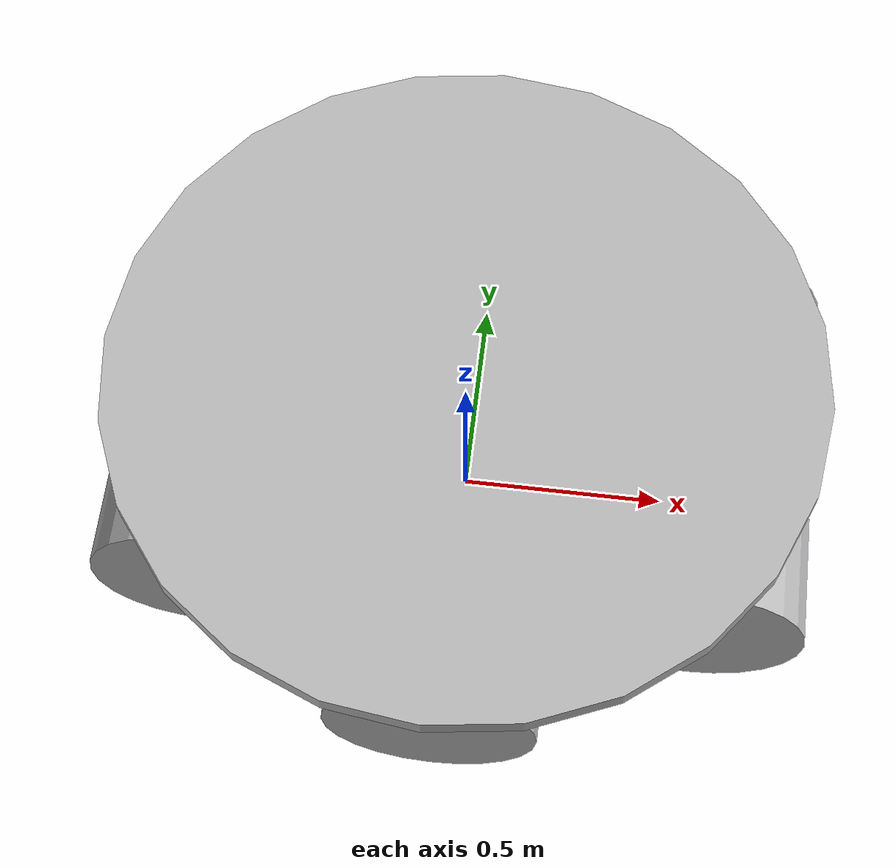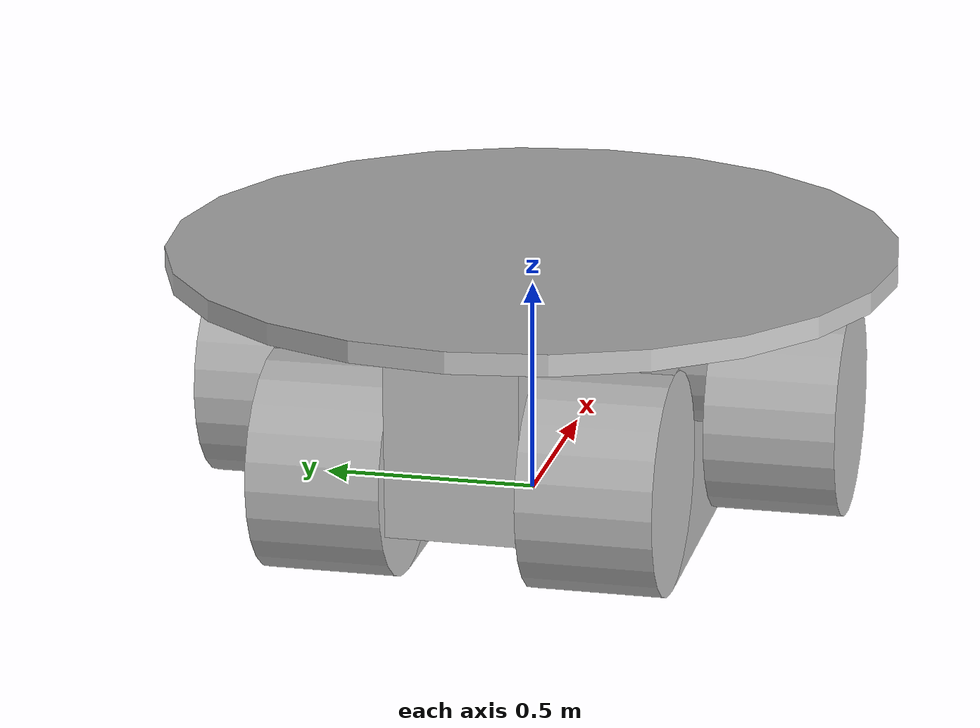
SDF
<?xml version='1.0'?>
<sdf version='1.6'>
		<model name="BaseModule">
			<self_collide>true</self_collide>
			<pose>0.0 0.0 0.0 0.0 0.0 0.0</pose>
			<!-- Start of parts of the pmodel BaseModule -->
				<!-- Start of declarations for part "BaseModule::LTREEL" -->
					<!-- Start of parts of part "BaseModule::LTREEL" -->
					<!-- End of parts of part "BaseModule::LTREEL" -->

					<!-- Start of links of part "BaseModule::LTREEL" -->
					<!-- link full name is BaseModule::LTREEL::Wheel -->
					<link name="1-Wheel">
							<pose>0.0 0.5999996434102257 0.2495222355772818 -1.5731851498233245 -0.0 0.0</pose>
							<inertial>
								<pose>0.0 0.0 0.0 0.0 0.0 0.0</pose>
								<inertia>
									<ixx>1.0</ixx>
									<ixy>0.0</ixy>
									<ixz>0.0</ixz>
									<iyy>1.0</iyy>
									<iyz>0.0</iyz>
									<izz>1.0</izz>
								</inertia>
								<mass>1.0</mass>
							</inertial>
							<!-- body full name is BaseModule::LTREEL::Wheel::wheel -->
							<collision name="1--wheel">
								<laser_retro>0.0</laser_retro>
								<pose>0.0 0.0 0.0 0.0 0.0 0.0</pose>
								<geometry>
									<cylinder>
										<radius>0.25</radius>
										<length>0.30000001192092896</length>
									</cylinder>
								</geometry>
								<surface>
									<bounce>
										<restitution_coefficient>0.0</restitution_coefficient>
										<threshold>100000.0</threshold>
									</bounce>
									<friction>
										<ode>
											<mu>1.0</mu>
											<mu2>1.0</mu2>
											<fdir1>0.0 0.0 0.0</fdir1>
											<slip1>0.0</slip1>
											<slip2>0.0</slip2>
										</ode>
										<torsional>
											<coefficient>1.0</coefficient>
											<surface_radius>0.0</surface_radius>
										</torsional>
									</friction>
								</surface>
							</collision>
							<visual name="1--wheel">
								<laser_retro>0.0</laser_retro>
								<pose>0.0 0.0 0.0 0.0 0.0 0.0</pose>
								<geometry>
									<cylinder>
										<radius>0.25</radius>
										<length>0.30000001192092896</length>
									</cylinder>
								</geometry>
								<surface>
									<bounce>
										<restitution_coefficient>0.0</restitution_coefficient>
										<threshold>100000.0</threshold>
									</bounce>
									<friction>
										<ode>
											<mu>1.0</mu>
											<mu2>1.0</mu2>
											<fdir1>0.0 0.0 0.0</fdir1>
											<slip1>0.0</slip1>
											<slip2>0.0</slip2>
										</ode>
										<torsional>
											<coefficient>1.0</coefficient>
											<surface_radius>0.0</surface_radius>
										</torsional>
									</friction>
								</surface>
							</visual>
					</link>
					<!-- link full name is BaseModule::LTREEL::Track -->
					<link name="2-Track">
							<pose>0.0 0.30000001192092896 0.25 3.140000104904175 0.0 0.0</pose>
							<inertial>
								<pose>0.0 0.0 0.0 0.0 0.0 0.0</pose>
								<inertia>
									<ixx>1.0</ixx>
									<ixy>0.0</ixy>
									<ixz>0.0</ixz>
									<iyy>1.0</iyy>
									<iyz>0.0</iyz>
									<izz>1.0</izz>
								</inertia>
								<mass>1.0</mass>
							</inertial>
							<!-- body full name is BaseModule::LTREEL::Track::FrontWheel -->
							<collision name="2--FrontWheel">
								<laser_retro>0.0</laser_retro>
								<pose>-0.6000000238418579 0.0 0.0 1.5700000524520874 0.0 0.0</pose>
								<geometry>
									<cylinder>
										<radius>0.25</radius>
										<length>0.30000001192092896</length>
									</cylinder>
								</geometry>
								<surface>
									<bounce>
										<restitution_coefficient>0.0</restitution_coefficient>
										<threshold>100000.0</threshold>
									</bounce>
									<friction>
										<ode>
											<mu>1.0</mu>
											<mu2>1.0</mu2>
											<fdir1>0.0 0.0 0.0</fdir1>
											<slip1>0.0</slip1>
											<slip2>0.0</slip2>
										</ode>
										<torsional>
											<coefficient>1.0</coefficient>
											<surface_radius>0.0</surface_radius>
										</torsional>
									</friction>
								</surface>
							</collision>
							<visual name="2--FrontWheel">
								<laser_retro>0.0</laser_retro>
								<pose>-0.6000000238418579 0.0 0.0 1.5700000524520874 0.0 0.0</pose>
								<geometry>
									<cylinder>
										<radius>0.25</radius>
										<length>0.30000001192092896</length>
									</cylinder>
								</geometry>
								<surface>
									<bounce>
										<restitution_coefficient>0.0</restitution_coefficient>
										<threshold>100000.0</threshold>
									</bounce>
									<friction>
										<ode>
											<mu>1.0</mu>
											<mu2>1.0</mu2>
											<fdir1>0.0 0.0 0.0</fdir1>
											<slip1>0.0</slip1>
											<slip2>0.0</slip2>
										</ode>
										<torsional>
											<coefficient>1.0</coefficient>
											<surface_radius>0.0</surface_radius>
										</torsional>
									</friction>
								</surface>
							</visual>
							<!-- body full name is BaseModule::LTREEL::Track::BackWheel -->
							<collision name="3--BackWheel">
								<laser_retro>0.0</laser_retro>
								<pose>0.6000000238418579 0.0 0.0 1.5700000524520874 0.0 0.0</pose>
								<geometry>
									<cylinder>
										<radius>0.25</radius>
										<length>0.30000001192092896</length>
									</cylinder>
								</geometry>
								<surface>
									<bounce>
										<restitution_coefficient>0.0</restitution_coefficient>
										<threshold>100000.0</threshold>
									</bounce>
									<friction>
										<ode>
											<mu>1.0</mu>
											<mu2>1.0</mu2>
											<fdir1>0.0 0.0 0.0</fdir1>
											<slip1>0.0</slip1>
											<slip2>0.0</slip2>
										</ode>
										<torsional>
											<coefficient>1.0</coefficient>
											<surface_radius>0.0</surface_radius>
										</torsional>
									</friction>
								</surface>
							</collision>
							<visual name="3--BackWheel">
								<laser_retro>0.0</laser_retro>
								<pose>0.6000000238418579 0.0 0.0 1.5700000524520874 0.0 0.0</pose>
								<geometry>
									<cylinder>
										<radius>0.25</radius>
										<length>0.30000001192092896</length>
									</cylinder>
								</geometry>
								<surface>
									<bounce>
										<restitution_coefficient>0.0</restitution_coefficient>
										<threshold>100000.0</threshold>
									</bounce>
									<friction>
										<ode>
											<mu>1.0</mu>
											<mu2>1.0</mu2>
											<fdir1>0.0 0.0 0.0</fdir1>
											<slip1>0.0</slip1>
											<slip2>0.0</slip2>
										</ode>
										<torsional>
											<coefficient>1.0</coefficient>
											<surface_radius>0.0</surface_radius>
										</torsional>
									</friction>
								</surface>
							</visual>
							<!-- body full name is BaseModule::LTREEL::Track::Top -->
							<collision name="4--Top">
								<laser_retro>0.0</laser_retro>
								<pose>0.0 0.0 0.25 0.0 0.0 0.0</pose>
								<geometry>
									<box>
										<size>1.2000000476837158 0.30000001192092896 0.0</size>
									</box>
								</geometry>
								<surface>
									<bounce>
										<restitution_coefficient>0.0</restitution_coefficient>
										<threshold>100000.0</threshold>
									</bounce>
									<friction>
										<ode>
											<mu>1.0</mu>
											<mu2>1.0</mu2>
											<fdir1>0.0 0.0 0.0</fdir1>
											<slip1>0.0</slip1>
											<slip2>0.0</slip2>
										</ode>
										<torsional>
											<coefficient>1.0</coefficient>
											<surface_radius>0.0</surface_radius>
										</torsional>
									</friction>
								</surface>
							</collision>
							<visual name="4--Top">
								<laser_retro>0.0</laser_retro>
								<pose>0.0 0.0 0.25 0.0 0.0 0.0</pose>
								<geometry>
									<box>
										<size>1.2000000476837158 0.30000001192092896 0.0</size>
									</box>
								</geometry>
								<surface>
									<bounce>
										<restitution_coefficient>0.0</restitution_coefficient>
										<threshold>100000.0</threshold>
									</bounce>
									<friction>
										<ode>
											<mu>1.0</mu>
											<mu2>1.0</mu2>
											<fdir1>0.0 0.0 0.0</fdir1>
											<slip1>0.0</slip1>
											<slip2>0.0</slip2>
										</ode>
										<torsional>
											<coefficient>1.0</coefficient>
											<surface_radius>0.0</surface_radius>
										</torsional>
									</friction>
								</surface>
							</visual>
							<!-- body full name is BaseModule::LTREEL::Track::Bottom -->
							<collision name="5--Bottom">
								<laser_retro>0.0</laser_retro>
								<pose>0.0 0.0 -0.25 0.0 0.0 0.0</pose>
								<geometry>
									<box>
										<size>1.2000000476837158 0.30000001192092896 0.0</size>
									</box>
								</geometry>
								<surface>
									<bounce>
										<restitution_coefficient>0.0</restitution_coefficient>
										<threshold>100000.0</threshold>
									</bounce>
									<friction>
										<ode>
											<mu>1.0</mu>
											<mu2>1.0</mu2>
											<fdir1>0.0 0.0 0.0</fdir1>
											<slip1>0.0</slip1>
											<slip2>0.0</slip2>
										</ode>
										<torsional>
											<coefficient>1.0</coefficient>
											<surface_radius>0.0</surface_radius>
										</torsional>
									</friction>
								</surface>
							</collision>
							<visual name="5--Bottom">
								<laser_retro>0.0</laser_retro>
								<pose>0.0 0.0 -0.25 0.0 0.0 0.0</pose>
								<geometry>
									<box>
										<size>1.2000000476837158 0.30000001192092896 0.0</size>
									</box>
								</geometry>
								<surface>
									<bounce>
										<restitution_coefficient>0.0</restitution_coefficient>
										<threshold>100000.0</threshold>
									</bounce>
									<friction>
										<ode>
											<mu>1.0</mu>
											<mu2>1.0</mu2>
											<fdir1>0.0 0.0 0.0</fdir1>
											<slip1>0.0</slip1>
											<slip2>0.0</slip2>
										</ode>
										<torsional>
											<coefficient>1.0</coefficient>
											<surface_radius>0.0</surface_radius>
										</torsional>
									</friction>
								</surface>
							</visual>
					</link>
					<!-- End of links of part "BaseModule::LTREEL" -->

					<!-- Start of joints of part "BaseModule::LTREEL" -->
					<!-- End of joints of part "BaseModule::LTREEL" -->

					<!-- Start of fixed connections of part "BaseModule::LTREEL" -->

					<!-- End of fixed connections of part "BaseModule::LTREEL" -->
				<!-- End of declarations for part "BaseModule::LTREEL" -->
				<!-- Start of declarations for part "BaseModule::RTREEL" -->
					<!-- Start of parts of part "BaseModule::RTREEL" -->
					<!-- End of parts of part "BaseModule::RTREEL" -->

					<!-- Start of links of part "BaseModule::RTREEL" -->
					<!-- link full name is BaseModule::RTREEL::Wheel -->
					<link name="3-Wheel">
							<pose>0.0 -0.6000000238418579 0.25 1.5700000524520874 -0.0 0.0</pose>
							<inertial>
								<pose>0.0 0.0 0.0 0.0 0.0 0.0</pose>
								<inertia>
									<ixx>1.0</ixx>
									<ixy>0.0</ixy>
									<ixz>0.0</ixz>
									<iyy>1.0</iyy>
									<iyz>0.0</iyz>
									<izz>1.0</izz>
								</inertia>
								<mass>1.0</mass>
							</inertial>
							<!-- body full name is BaseModule::RTREEL::Wheel::wheel -->
							<collision name="6--wheel">
								<laser_retro>0.0</laser_retro>
								<pose>0.0 0.0 0.0 0.0 0.0 0.0</pose>
								<geometry>
									<cylinder>
										<radius>0.25</radius>
										<length>0.30000001192092896</length>
									</cylinder>
								</geometry>
								<surface>
									<bounce>
										<restitution_coefficient>0.0</restitution_coefficient>
										<threshold>100000.0</threshold>
									</bounce>
									<friction>
										<ode>
											<mu>1.0</mu>
											<mu2>1.0</mu2>
											<fdir1>0.0 0.0 0.0</fdir1>
											<slip1>0.0</slip1>
											<slip2>0.0</slip2>
										</ode>
										<torsional>
											<coefficient>1.0</coefficient>
											<surface_radius>0.0</surface_radius>
										</torsional>
									</friction>
								</surface>
							</collision>
							<visual name="6--wheel">
								<laser_retro>0.0</laser_retro>
								<pose>0.0 0.0 0.0 0.0 0.0 0.0</pose>
								<geometry>
									<cylinder>
										<radius>0.25</radius>
										<length>0.30000001192092896</length>
									</cylinder>
								</geometry>
								<surface>
									<bounce>
										<restitution_coefficient>0.0</restitution_coefficient>
										<threshold>100000.0</threshold>
									</bounce>
									<friction>
										<ode>
											<mu>1.0</mu>
											<mu2>1.0</mu2>
											<fdir1>0.0 0.0 0.0</fdir1>
											<slip1>0.0</slip1>
											<slip2>0.0</slip2>
										</ode>
										<torsional>
											<coefficient>1.0</coefficient>
											<surface_radius>0.0</surface_radius>
										</torsional>
									</friction>
								</surface>
							</visual>
					</link>
					<!-- link full name is BaseModule::RTREEL::Track -->
					<link name="4-Track">
							<pose>0.0 -0.30000001192092896 0.25 0.0 0.0 0.0</pose>
							<inertial>
								<pose>0.0 0.0 0.0 0.0 0.0 0.0</pose>
								<inertia>
									<ixx>1.0</ixx>
									<ixy>0.0</ixy>
									<ixz>0.0</ixz>
									<iyy>1.0</iyy>
									<iyz>0.0</iyz>
									<izz>1.0</izz>
								</inertia>
								<mass>1.0</mass>
							</inertial>
							<!-- body full name is BaseModule::RTREEL::Track::FrontWheel -->
							<collision name="7--FrontWheel">
								<laser_retro>0.0</laser_retro>
								<pose>-0.6000000238418579 0.0 0.0 1.5700000524520874 0.0 0.0</pose>
								<geometry>
									<cylinder>
										<radius>0.25</radius>
										<length>0.30000001192092896</length>
									</cylinder>
								</geometry>
								<surface>
									<bounce>
										<restitution_coefficient>0.0</restitution_coefficient>
										<threshold>100000.0</threshold>
									</bounce>
									<friction>
										<ode>
											<mu>1.0</mu>
											<mu2>1.0</mu2>
											<fdir1>0.0 0.0 0.0</fdir1>
											<slip1>0.0</slip1>
											<slip2>0.0</slip2>
										</ode>
										<torsional>
											<coefficient>1.0</coefficient>
											<surface_radius>0.0</surface_radius>
										</torsional>
									</friction>
								</surface>
							</collision>
							<visual name="7--FrontWheel">
								<laser_retro>0.0</laser_retro>
								<pose>-0.6000000238418579 0.0 0.0 1.5700000524520874 0.0 0.0</pose>
								<geometry>
									<cylinder>
										<radius>0.25</radius>
										<length>0.30000001192092896</length>
									</cylinder>
								</geometry>
								<surface>
									<bounce>
										<restitution_coefficient>0.0</restitution_coefficient>
										<threshold>100000.0</threshold>
									</bounce>
									<friction>
										<ode>
											<mu>1.0</mu>
											<mu2>1.0</mu2>
											<fdir1>0.0 0.0 0.0</fdir1>
											<slip1>0.0</slip1>
											<slip2>0.0</slip2>
										</ode>
										<torsional>
											<coefficient>1.0</coefficient>
											<surface_radius>0.0</surface_radius>
										</torsional>
									</friction>
								</surface>
							</visual>
							<!-- body full name is BaseModule::RTREEL::Track::BackWheel -->
							<collision name="8--BackWheel">
								<laser_retro>0.0</laser_retro>
								<pose>0.6000000238418579 0.0 0.0 1.5700000524520874 0.0 0.0</pose>
								<geometry>
									<cylinder>
										<radius>0.25</radius>
										<length>0.30000001192092896</length>
									</cylinder>
								</geometry>
								<surface>
									<bounce>
										<restitution_coefficient>0.0</restitution_coefficient>
										<threshold>100000.0</threshold>
									</bounce>
									<friction>
										<ode>
											<mu>1.0</mu>
											<mu2>1.0</mu2>
											<fdir1>0.0 0.0 0.0</fdir1>
											<slip1>0.0</slip1>
											<slip2>0.0</slip2>
										</ode>
										<torsional>
											<coefficient>1.0</coefficient>
											<surface_radius>0.0</surface_radius>
										</torsional>
									</friction>
								</surface>
							</collision>
							<visual name="8--BackWheel">
								<laser_retro>0.0</laser_retro>
								<pose>0.6000000238418579 0.0 0.0 1.5700000524520874 0.0 0.0</pose>
								<geometry>
									<cylinder>
										<radius>0.25</radius>
										<length>0.30000001192092896</length>
									</cylinder>
								</geometry>
								<surface>
									<bounce>
										<restitution_coefficient>0.0</restitution_coefficient>
										<threshold>100000.0</threshold>
									</bounce>
									<friction>
										<ode>
											<mu>1.0</mu>
											<mu2>1.0</mu2>
											<fdir1>0.0 0.0 0.0</fdir1>
											<slip1>0.0</slip1>
											<slip2>0.0</slip2>
										</ode>
										<torsional>
											<coefficient>1.0</coefficient>
											<surface_radius>0.0</surface_radius>
										</torsional>
									</friction>
								</surface>
							</visual>
							<!-- body full name is BaseModule::RTREEL::Track::Top -->
							<collision name="9--Top">
								<laser_retro>0.0</laser_retro>
								<pose>0.0 0.0 0.25 0.0 0.0 0.0</pose>
								<geometry>
									<box>
										<size>1.2000000476837158 0.30000001192092896 0.0</size>
									</box>
								</geometry>
								<surface>
									<bounce>
										<restitution_coefficient>0.0</restitution_coefficient>
										<threshold>100000.0</threshold>
									</bounce>
									<friction>
										<ode>
											<mu>1.0</mu>
											<mu2>1.0</mu2>
											<fdir1>0.0 0.0 0.0</fdir1>
											<slip1>0.0</slip1>
											<slip2>0.0</slip2>
										</ode>
										<torsional>
											<coefficient>1.0</coefficient>
											<surface_radius>0.0</surface_radius>
										</torsional>
									</friction>
								</surface>
							</collision>
							<visual name="9--Top">
								<laser_retro>0.0</laser_retro>
								<pose>0.0 0.0 0.25 0.0 0.0 0.0</pose>
								<geometry>
									<box>
										<size>1.2000000476837158 0.30000001192092896 0.0</size>
									</box>
								</geometry>
								<surface>
									<bounce>
										<restitution_coefficient>0.0</restitution_coefficient>
										<threshold>100000.0</threshold>
									</bounce>
									<friction>
										<ode>
											<mu>1.0</mu>
											<mu2>1.0</mu2>
											<fdir1>0.0 0.0 0.0</fdir1>
											<slip1>0.0</slip1>
											<slip2>0.0</slip2>
										</ode>
										<torsional>
											<coefficient>1.0</coefficient>
											<surface_radius>0.0</surface_radius>
										</torsional>
									</friction>
								</surface>
							</visual>
							<!-- body full name is BaseModule::RTREEL::Track::Bottom -->
							<collision name="10--Bottom">
								<laser_retro>0.0</laser_retro>
								<pose>0.0 0.0 -0.25 0.0 0.0 0.0</pose>
								<geometry>
									<box>
										<size>1.2000000476837158 0.30000001192092896 0.0</size>
									</box>
								</geometry>
								<surface>
									<bounce>
										<restitution_coefficient>0.0</restitution_coefficient>
										<threshold>100000.0</threshold>
									</bounce>
									<friction>
										<ode>
											<mu>1.0</mu>
											<mu2>1.0</mu2>
											<fdir1>0.0 0.0 0.0</fdir1>
											<slip1>0.0</slip1>
											<slip2>0.0</slip2>
										</ode>
										<torsional>
											<coefficient>1.0</coefficient>
											<surface_radius>0.0</surface_radius>
										</torsional>
									</friction>
								</surface>
							</collision>
							<visual name="10--Bottom">
								<laser_retro>0.0</laser_retro>
								<pose>0.0 0.0 -0.25 0.0 0.0 0.0</pose>
								<geometry>
									<box>
										<size>1.2000000476837158 0.30000001192092896 0.0</size>
									</box>
								</geometry>
								<surface>
									<bounce>
										<restitution_coefficient>0.0</restitution_coefficient>
										<threshold>100000.0</threshold>
									</bounce>
									<friction>
										<ode>
											<mu>1.0</mu>
											<mu2>1.0</mu2>
											<fdir1>0.0 0.0 0.0</fdir1>
											<slip1>0.0</slip1>
											<slip2>0.0</slip2>
										</ode>
										<torsional>
											<coefficient>1.0</coefficient>
											<surface_radius>0.0</surface_radius>
										</torsional>
									</friction>
								</surface>
							</visual>
					</link>
					<!-- End of links of part "BaseModule::RTREEL" -->

					<!-- Start of joints of part "BaseModule::RTREEL" -->
					<!-- End of joints of part "BaseModule::RTREEL" -->

					<!-- Start of fixed connections of part "BaseModule::RTREEL" -->

					<!-- End of fixed connections of part "BaseModule::RTREEL" -->
				<!-- End of declarations for part "BaseModule::RTREEL" -->
			<!-- End of parts of the pmodel BaseModule -->

			<!-- Start of links of the pmodel BaseModule -->
			<!-- link full name is BaseModule::Core -->
			<link name="5-Core">
					<pose>0.0 0.0 0.574999988079071 0.0 0.0 0.0</pose>
					<inertial>
						<pose>0.0 0.0 0.0 0.0 0.0 0.0</pose>
						<inertia>
							<ixx>1.0</ixx>
							<ixy>0.0</ixy>
							<ixz>0.0</ixz>
							<iyy>1.0</iyy>
							<iyz>0.0</iyz>
							<izz>1.0</izz>
						</inertia>
						<mass>1.0</mass>
					</inertial>
					<!-- body full name is BaseModule::Core::Spine -->
					<collision name="11--Spine">
						<laser_retro>0.0</laser_retro>
						<pose>0.0 0.0 -0.22499999403953552 0.0 0.0 1.5700000524520874</pose>
						<geometry>
							<box>
								<size>0.30000001192092896 1.600000023841858 0.4000000059604645</size>
							</box>
						</geometry>
						<surface>
							<bounce>
								<restitution_coefficient>0.0</restitution_coefficient>
								<threshold>100000.0</threshold>
							</bounce>
							<friction>
								<ode>
									<mu>1.0</mu>
									<mu2>1.0</mu2>
									<fdir1>0.0 0.0 0.0</fdir1>
									<slip1>0.0</slip1>
									<slip2>0.0</slip2>
								</ode>
								<torsional>
									<coefficient>1.0</coefficient>
									<surface_radius>0.0</surface_radius>
								</torsional>
							</friction>
						</surface>
					</collision>
					<visual name="11--Spine">
						<laser_retro>0.0</laser_retro>
						<pose>0.0 0.0 -0.22499999403953552 0.0 0.0 1.5700000524520874</pose>
						<geometry>
							<box>
								<size>0.30000001192092896 1.600000023841858 0.4000000059604645</size>
							</box>
						</geometry>
						<surface>
							<bounce>
								<restitution_coefficient>0.0</restitution_coefficient>
								<threshold>100000.0</threshold>
							</bounce>
							<friction>
								<ode>
									<mu>1.0</mu>
									<mu2>1.0</mu2>
									<fdir1>0.0 0.0 0.0</fdir1>
									<slip1>0.0</slip1>
									<slip2>0.0</slip2>
								</ode>
								<torsional>
									<coefficient>1.0</coefficient>
									<surface_radius>0.0</surface_radius>
								</torsional>
							</friction>
						</surface>
					</visual>
					<!-- body full name is BaseModule::Core::Frame -->
					<collision name="12--Frame">
						<laser_retro>0.0</laser_retro>
						<pose>0.0 0.0 0.0 0.0 0.0 0.0</pose>
						<geometry>
							<cylinder>
								<radius>0.8500000238418579</radius>
								<length>0.05000000074505806</length>
							</cylinder>
						</geometry>
						<surface>
							<bounce>
								<restitution_coefficient>0.0</restitution_coefficient>
								<threshold>100000.0</threshold>
							</bounce>
							<friction>
								<ode>
									<mu>1.0</mu>
									<mu2>1.0</mu2>
									<fdir1>0.0 0.0 0.0</fdir1>
									<slip1>0.0</slip1>
									<slip2>0.0</slip2>
								</ode>
								<torsional>
									<coefficient>1.0</coefficient>
									<surface_radius>0.0</surface_radius>
								</torsional>
							</friction>
						</surface>
					</collision>
					<visual name="12--Frame">
						<laser_retro>0.0</laser_retro>
						<pose>0.0 0.0 0.0 0.0 0.0 0.0</pose>
						<geometry>
							<cylinder>
								<radius>0.8500000238418579</radius>
								<length>0.05000000074505806</length>
							</cylinder>
						</geometry>
						<surface>
							<bounce>
								<restitution_coefficient>0.0</restitution_coefficient>
								<threshold>100000.0</threshold>
							</bounce>
							<friction>
								<ode>
									<mu>1.0</mu>
									<mu2>1.0</mu2>
									<fdir1>0.0 0.0 0.0</fdir1>
									<slip1>0.0</slip1>
									<slip2>0.0</slip2>
								</ode>
								<torsional>
									<coefficient>1.0</coefficient>
									<surface_radius>0.0</surface_radius>
								</torsional>
							</friction>
						</surface>
					</visual>
			</link>
			<!-- End of links of the pmodel BaseModule -->

			<!-- Start of joints of the pmodel BaseModule -->
			<!-- End of joints of the pmodel BaseModule -->

			<!-- Start of fixed connections of the pmodel BaseModule -->
			<!-- fixed joint full name is BaseModule::Core::fixedJoint::BaseModule::LTREEL::Track from BaseModule::Core to BaseModule::LTREEL::Track -->
			<joint name="6-fixedJoint" type="fixed">
				<parent>5-Core</parent>
				<child>2-Track</child>
				<axis><xyz>0 0 1</xyz></axis>
			</joint>
			<!-- fixed joint full name is BaseModule::Core::fixedJoint::BaseModule::RTREEL::Track from BaseModule::Core to BaseModule::RTREEL::Track -->
			<joint name="7-fixedJoint" type="fixed">
				<parent>5-Core</parent>
				<child>4-Track</child>
				<axis><xyz>0 0 1</xyz></axis>
			</joint>
			<!-- End of fixed connections of the pmodel BaseModule -->
		</model>
</sdf>
